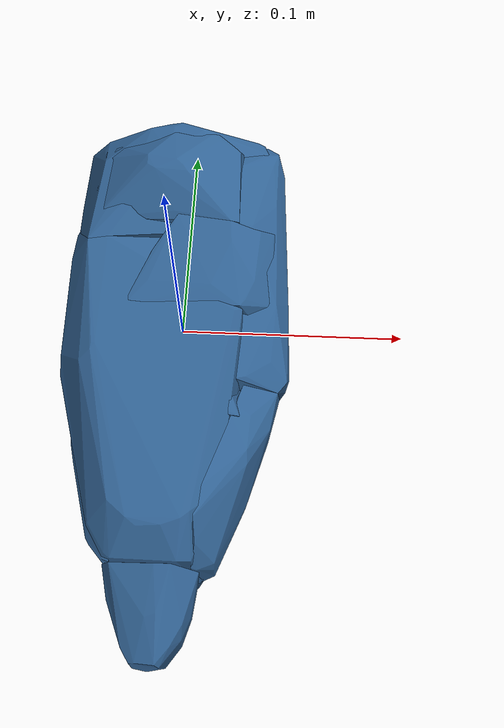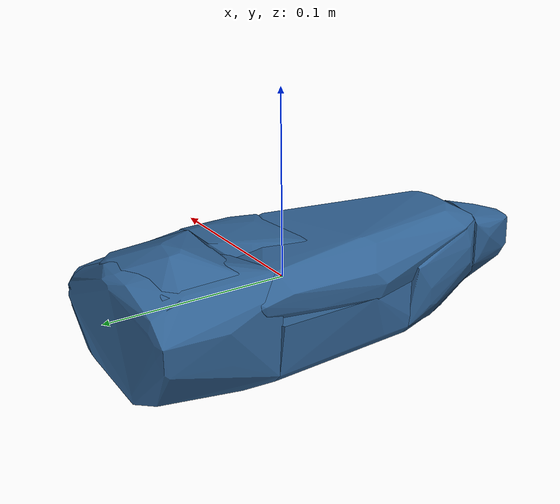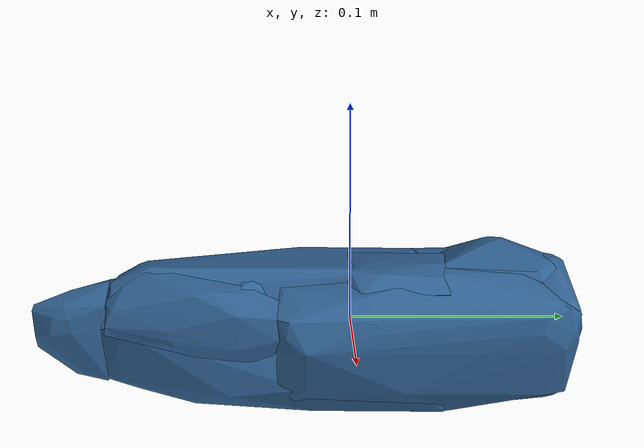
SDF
<?xml version='1.0' encoding='UTF-8'?>
<!-- This SDF was autogenerated by obj_to_drake_sdf.py -->
<sdf version="1.7">
  <model name="dish_soap">
    <link name="dish_soap">
      <inertial>
        <pose>0 0 0 0 0 0</pose>
        <mass>0.05</mass>
        <inertia>
          <ixx>0.00019998221</ixx>
          <iyy>4.1873174e-05</iyy>
          <izz>0.00021403143</izz>
          <ixy>-3.4180947e-07</ixy>
          <ixz>-2.5113274e-07</ixz>
          <iyz>-1.803641e-06</iyz>
        </inertia>
      </inertial>
      <visual name="convex_0">
        <pose>0 0 0 0 0 0</pose>
        <geometry>
          <mesh>
            <uri>dish_soap_convex_0.obj</uri>
          </mesh>
        </geometry>
        <material>
          <diffuse>0.19607843137254902 0.39215686274509803 0.5882352941176471 1</diffuse>
        </material>
      </visual>
      <collision name="convex_0_volume">
        <pose>0 0 0 0 0 0</pose>
        <geometry>
          <mesh>
            <uri>dish_soap_convex_0.obj</uri>
          </mesh>
        </geometry>
        <drake:proximity_properties xmlns:drake="uri:drake">
          <drake:compliant_hydroelastic/>
          <drake:hydroelastic_modulus> 3.0e7 </drake:hydroelastic_modulus>
          <drake:mesh_resolution_hint> 0.02 </drake:mesh_resolution_hint>
          <drake:hunt_crossley_dissipation>10</drake:hunt_crossley_dissipation>
          <drake:mu_dynamic>0.3</drake:mu_dynamic>
        </drake:proximity_properties>
      </collision>
      <visual name="convex_1">
        <pose>0 0 0 0 0 0</pose>
        <geometry>
          <mesh>
            <uri>dish_soap_convex_1.obj</uri>
          </mesh>
        </geometry>
        <material>
          <diffuse>0.19607843137254902 0.39215686274509803 0.5882352941176471 1</diffuse>
        </material>
      </visual>
      <collision name="convex_1_volume">
        <pose>0 0 0 0 0 0</pose>
        <geometry>
          <mesh>
            <uri>dish_soap_convex_1.obj</uri>
          </mesh>
        </geometry>
        <drake:proximity_properties xmlns:drake="uri:drake">
          <drake:compliant_hydroelastic/>
          <drake:hydroelastic_modulus> 3.0e7 </drake:hydroelastic_modulus>
          <drake:mesh_resolution_hint> 0.02 </drake:mesh_resolution_hint>
          <drake:hunt_crossley_dissipation>10</drake:hunt_crossley_dissipation>
          <drake:mu_dynamic>0.3</drake:mu_dynamic>
        </drake:proximity_properties>
      </collision>
      <visual name="convex_2">
        <pose>0 0 0 0 0 0</pose>
        <geometry>
          <mesh>
            <uri>dish_soap_convex_2.obj</uri>
          </mesh>
        </geometry>
        <material>
          <diffuse>0.19607843137254902 0.39215686274509803 0.5882352941176471 1</diffuse>
        </material>
      </visual>
      <collision name="convex_2_volume">
        <pose>0 0 0 0 0 0</pose>
        <geometry>
          <mesh>
            <uri>dish_soap_convex_2.obj</uri>
          </mesh>
        </geometry>
        <drake:proximity_properties xmlns:drake="uri:drake">
          <drake:compliant_hydroelastic/>
          <drake:hydroelastic_modulus> 3.0e7 </drake:hydroelastic_modulus>
          <drake:mesh_resolution_hint> 0.02 </drake:mesh_resolution_hint>
          <drake:hunt_crossley_dissipation>10</drake:hunt_crossley_dissipation>
          <drake:mu_dynamic>0.3</drake:mu_dynamic>
        </drake:proximity_properties>
      </collision>
      <visual name="convex_3">
        <pose>0 0 0 0 0 0</pose>
        <geometry>
          <mesh>
            <uri>dish_soap_convex_3.obj</uri>
          </mesh>
        </geometry>
        <material>
          <diffuse>0.19607843137254902 0.39215686274509803 0.5882352941176471 1</diffuse>
        </material>
      </visual>
      <collision name="convex_3_volume">
        <pose>0 0 0 0 0 0</pose>
        <geometry>
          <mesh>
            <uri>dish_soap_convex_3.obj</uri>
          </mesh>
        </geometry>
        <drake:proximity_properties xmlns:drake="uri:drake">
          <drake:compliant_hydroelastic/>
          <drake:hydroelastic_modulus> 3.0e7 </drake:hydroelastic_modulus>
          <drake:mesh_resolution_hint> 0.02 </drake:mesh_resolution_hint>
          <drake:hunt_crossley_dissipation>10</drake:hunt_crossley_dissipation>
          <drake:mu_dynamic>0.3</drake:mu_dynamic>
        </drake:proximity_properties>
      </collision>
      <visual name="convex_4">
        <pose>0 0 0 0 0 0</pose>
        <geometry>
          <mesh>
            <uri>dish_soap_convex_4.obj</uri>
          </mesh>
        </geometry>
        <material>
          <diffuse>0.19607843137254902 0.39215686274509803 0.5882352941176471 1</diffuse>
        </material>
      </visual>
      <collision name="convex_4_volume">
        <pose>0 0 0 0 0 0</pose>
        <geometry>
          <mesh>
            <uri>dish_soap_convex_4.obj</uri>
          </mesh>
        </geometry>
        <drake:proximity_properties xmlns:drake="uri:drake">
          <drake:compliant_hydroelastic/>
          <drake:hydroelastic_modulus> 3.0e7 </drake:hydroelastic_modulus>
          <drake:mesh_resolution_hint> 0.02 </drake:mesh_resolution_hint>
          <drake:hunt_crossley_dissipation>10</drake:hunt_crossley_dissipation>
          <drake:mu_dynamic>0.3</drake:mu_dynamic>
        </drake:proximity_properties>
      </collision>
      <visual name="convex_5">
        <pose>0 0 0 0 0 0</pose>
        <geometry>
          <mesh>
            <uri>dish_soap_convex_5.obj</uri>
          </mesh>
        </geometry>
        <material>
          <diffuse>0.19607843137254902 0.39215686274509803 0.5882352941176471 1</diffuse>
        </material>
      </visual>
      <collision name="convex_5_volume">
        <pose>0 0 0 0 0 0</pose>
        <geometry>
          <mesh>
            <uri>dish_soap_convex_5.obj</uri>
          </mesh>
        </geometry>
        <drake:proximity_properties xmlns:drake="uri:drake">
          <drake:compliant_hydroelastic/>
          <drake:hydroelastic_modulus> 3.0e7 </drake:hydroelastic_modulus>
          <drake:mesh_resolution_hint> 0.02 </drake:mesh_resolution_hint>
          <drake:hunt_crossley_dissipation>10</drake:hunt_crossley_dissipation>
          <drake:mu_dynamic>0.3</drake:mu_dynamic>
        </drake:proximity_properties>
      </collision>
      <visual name="convex_6">
        <pose>0 0 0 0 0 0</pose>
        <geometry>
          <mesh>
            <uri>dish_soap_convex_6.obj</uri>
          </mesh>
        </geometry>
        <material>
          <diffuse>0.19607843137254902 0.39215686274509803 0.5882352941176471 1</diffuse>
        </material>
      </visual>
      <collision name="convex_6_volume">
        <pose>0 0 0 0 0 0</pose>
        <geometry>
          <mesh>
            <uri>dish_soap_convex_6.obj</uri>
          </mesh>
        </geometry>
        <drake:proximity_properties xmlns:drake="uri:drake">
          <drake:compliant_hydroelastic/>
          <drake:hydroelastic_modulus> 3.0e7 </drake:hydroelastic_modulus>
          <drake:mesh_resolution_hint> 0.02 </drake:mesh_resolution_hint>
          <drake:hunt_crossley_dissipation>10</drake:hunt_crossley_dissipation>
          <drake:mu_dynamic>0.3</drake:mu_dynamic>
        </drake:proximity_properties>
      </collision>
      <visual name="convex_7">
        <pose>0 0 0 0 0 0</pose>
        <geometry>
          <mesh>
            <uri>dish_soap_convex_7.obj</uri>
          </mesh>
        </geometry>
        <material>
          <diffuse>0.19607843137254902 0.39215686274509803 0.5882352941176471 1</diffuse>
        </material>
      </visual>
      <collision name="convex_7_volume">
        <pose>0 0 0 0 0 0</pose>
        <geometry>
          <mesh>
            <uri>dish_soap_convex_7.obj</uri>
          </mesh>
        </geometry>
        <drake:proximity_properties xmlns:drake="uri:drake">
          <drake:compliant_hydroelastic/>
          <drake:hydroelastic_modulus> 3.0e7 </drake:hydroelastic_modulus>
          <drake:mesh_resolution_hint> 0.02 </drake:mesh_resolution_hint>
          <drake:hunt_crossley_dissipation>10</drake:hunt_crossley_dissipation>
          <drake:mu_dynamic>0.3</drake:mu_dynamic>
        </drake:proximity_properties>
      </collision>
      <visual name="convex_8">
        <pose>0 0 0 0 0 0</pose>
        <geometry>
          <mesh>
            <uri>dish_soap_convex_8.obj</uri>
          </mesh>
        </geometry>
        <material>
          <diffuse>0.19607843137254902 0.39215686274509803 0.5882352941176471 1</diffuse>
        </material>
      </visual>
      <collision name="convex_8_volume">
        <pose>0 0 0 0 0 0</pose>
        <geometry>
          <mesh>
            <uri>dish_soap_convex_8.obj</uri>
          </mesh>
        </geometry>
        <drake:proximity_properties xmlns:drake="uri:drake">
          <drake:compliant_hydroelastic/>
          <drake:hydroelastic_modulus> 3.0e7 </drake:hydroelastic_modulus>
          <drake:mesh_resolution_hint> 0.02 </drake:mesh_resolution_hint>
          <drake:hunt_crossley_dissipation>10</drake:hunt_crossley_dissipation>
          <drake:mu_dynamic>0.3</drake:mu_dynamic>
        </drake:proximity_properties>
      </collision>
      <visual name="convex_9">
        <pose>0 0 0 0 0 0</pose>
        <geometry>
          <mesh>
            <uri>dish_soap_convex_9.obj</uri>
          </mesh>
        </geometry>
        <material>
          <diffuse>0.19607843137254902 0.39215686274509803 0.5882352941176471 1</diffuse>
        </material>
      </visual>
      <collision name="convex_9_volume">
        <pose>0 0 0 0 0 0</pose>
        <geometry>
          <mesh>
            <uri>dish_soap_convex_9.obj</uri>
          </mesh>
        </geometry>
        <drake:proximity_properties xmlns:drake="uri:drake">
          <drake:compliant_hydroelastic/>
          <drake:hydroelastic_modulus> 3.0e7 </drake:hydroelastic_modulus>
          <drake:mesh_resolution_hint> 0.02 </drake:mesh_resolution_hint>
          <drake:hunt_crossley_dissipation>10</drake:hunt_crossley_dissipation>
          <drake:mu_dynamic>0.3</drake:mu_dynamic>
        </drake:proximity_properties>
      </collision>
    </link>
  </model>
</sdf>
